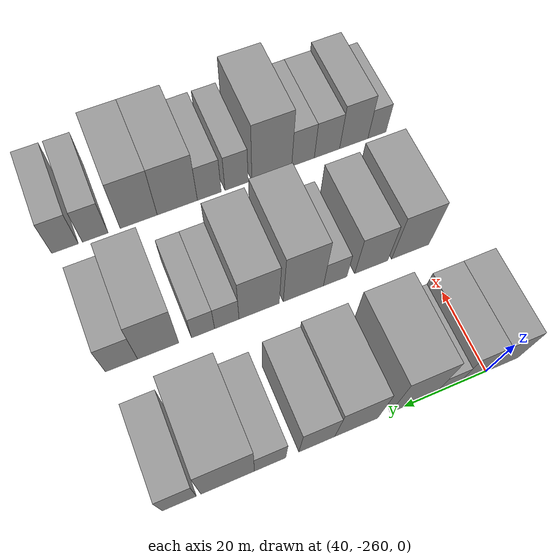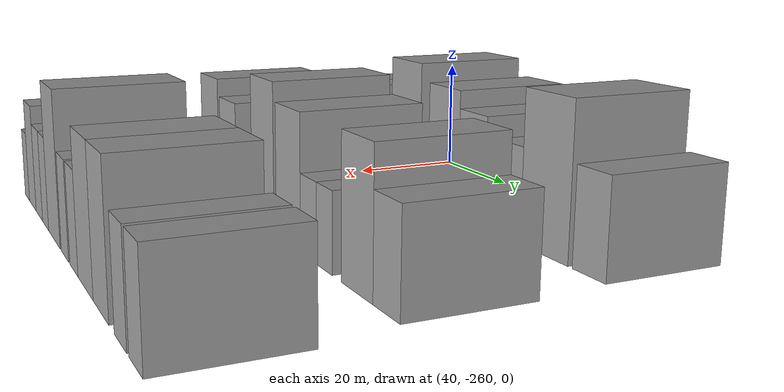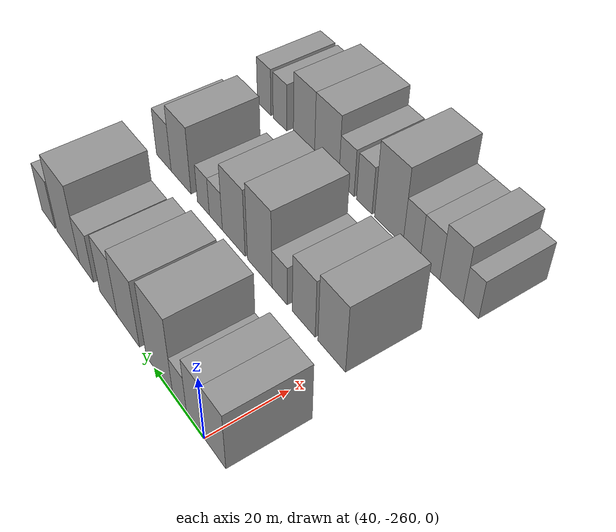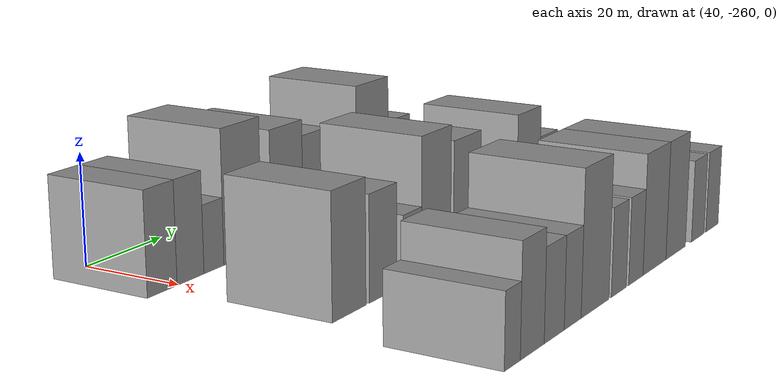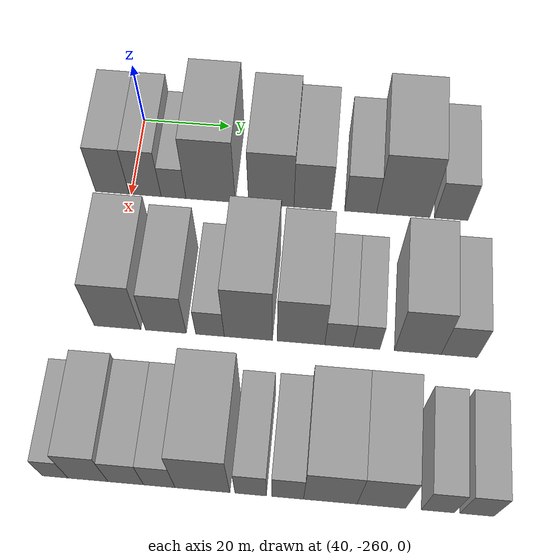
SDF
<sdf version="1.6">
 <world name="default">
  <model name="building_10">
   <static>1</static>
   <pose>50.0000 -264.2243 0 0.000000 0.000000 0.000000</pose>
   <link name="link">
    <pose>0 0 9.00 0 0 0</pose>
    <collision name="collision"><geometry><box><size>20.0000 7.6328 18.0000</size></box></geometry></collision>
    <visual name="visual">
     <cast_shadows>0</cast_shadows>
     <geometry><box><size>20.0000 7.6328 18.0000</size></box></geometry>
     <material>
      <script>
       <uri>model://grey_wall/materials/scripts</uri>
       <uri>model://grey_wall/materials/textures</uri>
       <name>vrc/grey_wall</name>
      </script>
     </material>
    </visual>
   </link>
  </model>
  <model name="building_11">
   <static>1</static>
   <pose>50.0000 -256.8023 0 0.000000 0.000000 0.000000</pose>
   <link name="link">
    <pose>0 0 9.00 0 0 0</pose>
    <collision name="collision"><geometry><box><size>20.0000 7.2111 18.0000</size></box></geometry></collision>
    <visual name="visual">
     <cast_shadows>0</cast_shadows>
     <geometry><box><size>20.0000 7.2111 18.0000</size></box></geometry>
     <material>
      <script>
       <uri>model://grey_wall/materials/scripts</uri>
       <uri>model://grey_wall/materials/textures</uri>
       <name>vrc/grey_wall</name>
      </script>
     </material>
    </visual>
   </link>
  </model>
  <model name="building_12">
   <static>1</static>
   <pose>50.0000 -250.4106 0 0.000000 0.000000 0.000000</pose>
   <link name="link">
    <pose>0 0 6.00 0 0 0</pose>
    <collision name="collision"><geometry><box><size>20.0000 5.5723 12.0000</size></box></geometry></collision>
    <visual name="visual">
     <cast_shadows>0</cast_shadows>
     <geometry><box><size>20.0000 5.5723 12.0000</size></box></geometry>
     <material>
      <script>
       <uri>model://grey_wall/materials/scripts</uri>
       <uri>model://grey_wall/materials/textures</uri>
       <name>vrc/grey_wall</name>
      </script>
     </material>
    </visual>
   </link>
  </model>
  <model name="building_13">
   <static>1</static>
   <pose>50.0000 -242.0929 0 0.000000 0.000000 0.000000</pose>
   <link name="link">
    <pose>0 0 12.00 0 0 0</pose>
    <collision name="collision"><geometry><box><size>20.0000 11.0631 24.0000</size></box></geometry></collision>
    <visual name="visual">
     <cast_shadows>0</cast_shadows>
     <geometry><box><size>20.0000 11.0631 24.0000</size></box></geometry>
     <material>
      <script>
       <uri>model://grey_wall/materials/scripts</uri>
       <uri>model://grey_wall/materials/textures</uri>
       <name>vrc/grey_wall</name>
      </script>
     </material>
    </visual>
   </link>
  </model>
  <model name="building_14">
   <static>1</static>
   <pose>50.0000 -228.4945 0 0.000000 0.000000 0.000000</pose>
   <link name="link">
    <pose>0 0 10.50 0 0 0</pose>
    <collision name="collision"><geometry><box><size>20.0000 10.1337 21.0000</size></box></geometry></collision>
    <visual name="visual">
     <cast_shadows>0</cast_shadows>
     <geometry><box><size>20.0000 10.1337 21.0000</size></box></geometry>
     <material>
      <script>
       <uri>model://grey_wall/materials/scripts</uri>
       <uri>model://grey_wall/materials/textures</uri>
       <name>vrc/grey_wall</name>
      </script>
     </material>
    </visual>
   </link>
  </model>
  <model name="building_15">
   <static>1</static>
   <pose>50.0000 -219.2789 0 0.000000 0.000000 0.000000</pose>
   <link name="link">
    <pose>0 0 9.00 0 0 0</pose>
    <collision name="collision"><geometry><box><size>20.0000 8.2975 18.0000</size></box></geometry></collision>
    <visual name="visual">
     <cast_shadows>0</cast_shadows>
     <geometry><box><size>20.0000 8.2975 18.0000</size></box></geometry>
     <material>
      <script>
       <uri>model://grey_wall/materials/scripts</uri>
       <uri>model://grey_wall/materials/textures</uri>
       <name>vrc/grey_wall</name>
      </script>
     </material>
    </visual>
   </link>
  </model>
  <model name="building_16">
   <static>1</static>
   <pose>50.0000 -208.5931 0 0.000000 0.000000 0.000000</pose>
   <link name="link">
    <pose>0 0 7.50 0 0 0</pose>
    <collision name="collision"><geometry><box><size>20.0000 7.0739 15.0000</size></box></geometry></collision>
    <visual name="visual">
     <cast_shadows>0</cast_shadows>
     <geometry><box><size>20.0000 7.0739 15.0000</size></box></geometry>
     <material>
      <script>
       <uri>model://grey_wall/materials/scripts</uri>
       <uri>model://grey_wall/materials/textures</uri>
       <name>vrc/grey_wall</name>
      </script>
     </material>
    </visual>
   </link>
  </model>
  <model name="building_17">
   <static>1</static>
   <pose>50.0000 -199.1446 0 0.000000 0.000000 0.000000</pose>
   <link name="link">
    <pose>0 0 12.00 0 0 0</pose>
    <collision name="collision"><geometry><box><size>20.0000 11.8231 24.0000</size></box></geometry></collision>
    <visual name="visual">
     <cast_shadows>0</cast_shadows>
     <geometry><box><size>20.0000 11.8231 24.0000</size></box></geometry>
     <material>
      <script>
       <uri>model://grey_wall/materials/scripts</uri>
       <uri>model://grey_wall/materials/textures</uri>
       <name>vrc/grey_wall</name>
      </script>
     </material>
    </visual>
   </link>
  </model>
  <model name="building_18">
   <static>1</static>
   <pose>50.0000 -188.5425 0 0.000000 0.000000 0.000000</pose>
   <link name="link">
    <pose>0 0 7.50 0 0 0</pose>
    <collision name="collision"><geometry><box><size>20.0000 7.3811 15.0000</size></box></geometry></collision>
    <visual name="visual">
     <cast_shadows>0</cast_shadows>
     <geometry><box><size>20.0000 7.3811 15.0000</size></box></geometry>
     <material>
      <script>
       <uri>model://grey_wall/materials/scripts</uri>
       <uri>model://grey_wall/materials/textures</uri>
       <name>vrc/grey_wall</name>
      </script>
     </material>
    </visual>
   </link>
  </model>
  <model name="building_93">
   <static>1</static>
   <pose>82.0000 -257.8873 0 0.000000 0.000000 0.000000</pose>
   <link name="link">
    <pose>0 0 10.50 0 0 0</pose>
    <collision name="collision"><geometry><box><size>20.0000 9.8212 21.0000</size></box></geometry></collision>
    <visual name="visual">
     <cast_shadows>0</cast_shadows>
     <geometry><box><size>20.0000 9.8212 21.0000</size></box></geometry>
     <material>
      <script>
       <uri>model://grey_wall/materials/scripts</uri>
       <uri>model://grey_wall/materials/textures</uri>
       <name>vrc/grey_wall</name>
      </script>
     </material>
    </visual>
   </link>
  </model>
  <model name="building_94">
   <static>1</static>
   <pose>82.0000 -247.6939 0 0.000000 0.000000 0.000000</pose>
   <link name="link">
    <pose>0 0 9.00 0 0 0</pose>
    <collision name="collision"><geometry><box><size>20.0000 8.5656 18.0000</size></box></geometry></collision>
    <visual name="visual">
     <cast_shadows>0</cast_shadows>
     <geometry><box><size>20.0000 8.5656 18.0000</size></box></geometry>
     <material>
      <script>
       <uri>model://grey_wall/materials/scripts</uri>
       <uri>model://grey_wall/materials/textures</uri>
       <name>vrc/grey_wall</name>
      </script>
     </material>
    </visual>
   </link>
  </model>
  <model name="building_95">
   <static>1</static>
   <pose>82.0000 -238.4251 0 0.000000 0.000000 0.000000</pose>
   <link name="link">
    <pose>0 0 6.00 0 0 0</pose>
    <collision name="collision"><geometry><box><size>20.0000 5.9721 12.0000</size></box></geometry></collision>
    <visual name="visual">
     <cast_shadows>0</cast_shadows>
     <geometry><box><size>20.0000 5.9721 12.0000</size></box></geometry>
     <material>
      <script>
       <uri>model://grey_wall/materials/scripts</uri>
       <uri>model://grey_wall/materials/textures</uri>
       <name>vrc/grey_wall</name>
      </script>
     </material>
    </visual>
   </link>
  </model>
  <model name="building_96">
   <static>1</static>
   <pose>82.0000 -230.4019 0 0.000000 0.000000 0.000000</pose>
   <link name="link">
    <pose>0 0 12.00 0 0 0</pose>
    <collision name="collision"><geometry><box><size>20.0000 10.0741 24.0000</size></box></geometry></collision>
    <visual name="visual">
     <cast_shadows>0</cast_shadows>
     <geometry><box><size>20.0000 10.0741 24.0000</size></box></geometry>
     <material>
      <script>
       <uri>model://grey_wall/materials/scripts</uri>
       <uri>model://grey_wall/materials/textures</uri>
       <name>vrc/grey_wall</name>
      </script>
     </material>
    </visual>
   </link>
  </model>
  <model name="building_97">
   <static>1</static>
   <pose>82.0000 -219.4289 0 0.000000 0.000000 0.000000</pose>
   <link name="link">
    <pose>0 0 10.50 0 0 0</pose>
    <collision name="collision"><geometry><box><size>20.0000 9.8720 21.0000</size></box></geometry></collision>
    <visual name="visual">
     <cast_shadows>0</cast_shadows>
     <geometry><box><size>20.0000 9.8720 21.0000</size></box></geometry>
     <material>
      <script>
       <uri>model://grey_wall/materials/scripts</uri>
       <uri>model://grey_wall/materials/textures</uri>
       <name>vrc/grey_wall</name>
      </script>
     </material>
    </visual>
   </link>
  </model>
  <model name="building_98">
   <static>1</static>
   <pose>82.0000 -211.5435 0 0.000000 0.000000 0.000000</pose>
   <link name="link">
    <pose>0 0 6.00 0 0 0</pose>
    <collision name="collision"><geometry><box><size>20.0000 5.8987 12.0000</size></box></geometry></collision>
    <visual name="visual">
     <cast_shadows>0</cast_shadows>
     <geometry><box><size>20.0000 5.8987 12.0000</size></box></geometry>
     <material>
      <script>
       <uri>model://grey_wall/materials/scripts</uri>
       <uri>model://grey_wall/materials/textures</uri>
       <name>vrc/grey_wall</name>
      </script>
     </material>
    </visual>
   </link>
  </model>
  <model name="building_99">
   <static>1</static>
   <pose>82.0000 -205.8228 0 0.000000 0.000000 0.000000</pose>
   <link name="link">
    <pose>0 0 6.00 0 0 0</pose>
    <collision name="collision"><geometry><box><size>20.0000 5.5427 12.0000</size></box></geometry></collision>
    <visual name="visual">
     <cast_shadows>0</cast_shadows>
     <geometry><box><size>20.0000 5.5427 12.0000</size></box></geometry>
     <material>
      <script>
       <uri>model://grey_wall/materials/scripts</uri>
       <uri>model://grey_wall/materials/textures</uri>
       <name>vrc/grey_wall</name>
      </script>
     </material>
    </visual>
   </link>
  </model>
  <model name="building_100">
   <static>1</static>
   <pose>82.0000 -195.2191 0 0.000000 0.000000 0.000000</pose>
   <link name="link">
    <pose>0 0 10.50 0 0 0</pose>
    <collision name="collision"><geometry><box><size>20.0000 9.6647 21.0000</size></box></geometry></collision>
    <visual name="visual">
     <cast_shadows>0</cast_shadows>
     <geometry><box><size>20.0000 9.6647 21.0000</size></box></geometry>
     <material>
      <script>
       <uri>model://grey_wall/materials/scripts</uri>
       <uri>model://grey_wall/materials/textures</uri>
       <name>vrc/grey_wall</name>
      </script>
     </material>
    </visual>
   </link>
  </model>
  <model name="building_101">
   <static>1</static>
   <pose>82.0000 -186.6621 0 0.000000 0.000000 0.000000</pose>
   <link name="link">
    <pose>0 0 7.50 0 0 0</pose>
    <collision name="collision"><geometry><box><size>20.0000 7.4494 15.0000</size></box></geometry></collision>
    <visual name="visual">
     <cast_shadows>0</cast_shadows>
     <geometry><box><size>20.0000 7.4494 15.0000</size></box></geometry>
     <material>
      <script>
       <uri>model://grey_wall/materials/scripts</uri>
       <uri>model://grey_wall/materials/textures</uri>
       <name>vrc/grey_wall</name>
      </script>
     </material>
    </visual>
   </link>
  </model>
  <model name="building_166">
   <static>1</static>
   <pose>114.0000 -264.9786 0 0.000000 0.000000 0.000000</pose>
   <link name="link">
    <pose>0 0 6.00 0 0 0</pose>
    <collision name="collision"><geometry><box><size>20.0000 5.0729 12.0000</size></box></geometry></collision>
    <visual name="visual">
     <cast_shadows>0</cast_shadows>
     <geometry><box><size>20.0000 5.0729 12.0000</size></box></geometry>
     <material>
      <script>
       <uri>model://grey_wall/materials/scripts</uri>
       <uri>model://grey_wall/materials/textures</uri>
       <name>vrc/grey_wall</name>
      </script>
     </material>
    </visual>
   </link>
  </model>
  <model name="building_167">
   <static>1</static>
   <pose>114.0000 -258.4959 0 0.000000 0.000000 0.000000</pose>
   <link name="link">
    <pose>0 0 9.00 0 0 0</pose>
    <collision name="collision"><geometry><box><size>20.0000 7.8925 18.0000</size></box></geometry></collision>
    <visual name="visual">
     <cast_shadows>0</cast_shadows>
     <geometry><box><size>20.0000 7.8925 18.0000</size></box></geometry>
     <material>
      <script>
       <uri>model://grey_wall/materials/scripts</uri>
       <uri>model://grey_wall/materials/textures</uri>
       <name>vrc/grey_wall</name>
      </script>
     </material>
    </visual>
   </link>
  </model>
  <model name="building_168">
   <static>1</static>
   <pose>114.0000 -251.0713 0 0.000000 0.000000 0.000000</pose>
   <link name="link">
    <pose>0 0 7.50 0 0 0</pose>
    <collision name="collision"><geometry><box><size>20.0000 6.9567 15.0000</size></box></geometry></collision>
    <visual name="visual">
     <cast_shadows>0</cast_shadows>
     <geometry><box><size>20.0000 6.9567 15.0000</size></box></geometry>
     <material>
      <script>
       <uri>model://grey_wall/materials/scripts</uri>
       <uri>model://grey_wall/materials/textures</uri>
       <name>vrc/grey_wall</name>
      </script>
     </material>
    </visual>
   </link>
  </model>
  <model name="building_169">
   <static>1</static>
   <pose>114.0000 -244.5166 0 0.000000 0.000000 0.000000</pose>
   <link name="link">
    <pose>0 0 7.50 0 0 0</pose>
    <collision name="collision"><geometry><box><size>20.0000 6.1526 15.0000</size></box></geometry></collision>
    <visual name="visual">
     <cast_shadows>0</cast_shadows>
     <geometry><box><size>20.0000 6.1526 15.0000</size></box></geometry>
     <material>
      <script>
       <uri>model://grey_wall/materials/scripts</uri>
       <uri>model://grey_wall/materials/textures</uri>
       <name>vrc/grey_wall</name>
      </script>
     </material>
    </visual>
   </link>
  </model>
  <model name="building_170">
   <static>1</static>
   <pose>114.0000 -236.1045 0 0.000000 0.000000 0.000000</pose>
   <link name="link">
    <pose>0 0 12.00 0 0 0</pose>
    <collision name="collision"><geometry><box><size>20.0000 10.6715 24.0000</size></box></geometry></collision>
    <visual name="visual">
     <cast_shadows>0</cast_shadows>
     <geometry><box><size>20.0000 10.6715 24.0000</size></box></geometry>
     <material>
      <script>
       <uri>model://grey_wall/materials/scripts</uri>
       <uri>model://grey_wall/materials/textures</uri>
       <name>vrc/grey_wall</name>
      </script>
     </material>
    </visual>
   </link>
  </model>
  <model name="building_171">
   <static>1</static>
   <pose>114.0000 -226.7245 0 0.000000 0.000000 0.000000</pose>
   <link name="link">
    <pose>0 0 7.50 0 0 0</pose>
    <collision name="collision"><geometry><box><size>20.0000 6.0885 15.0000</size></box></geometry></collision>
    <visual name="visual">
     <cast_shadows>0</cast_shadows>
     <geometry><box><size>20.0000 6.0885 15.0000</size></box></geometry>
     <material>
      <script>
       <uri>model://grey_wall/materials/scripts</uri>
       <uri>model://grey_wall/materials/textures</uri>
       <name>vrc/grey_wall</name>
      </script>
     </material>
    </visual>
   </link>
  </model>
  <model name="building_172">
   <static>1</static>
   <pose>114.0000 -219.5933 0 0.000000 0.000000 0.000000</pose>
   <link name="link">
    <pose>0 0 7.50 0 0 0</pose>
    <collision name="collision"><geometry><box><size>20.0000 6.1740 15.0000</size></box></geometry></collision>
    <visual name="visual">
     <cast_shadows>0</cast_shadows>
     <geometry><box><size>20.0000 6.1740 15.0000</size></box></geometry>
     <material>
      <script>
       <uri>model://grey_wall/materials/scripts</uri>
       <uri>model://grey_wall/materials/textures</uri>
       <name>vrc/grey_wall</name>
      </script>
     </material>
    </visual>
   </link>
  </model>
  <model name="building_173">
   <static>1</static>
   <pose>114.0000 -211.3377 0 0.000000 0.000000 0.000000</pose>
   <link name="link">
    <pose>0 0 10.50 0 0 0</pose>
    <collision name="collision"><geometry><box><size>20.0000 10.3371 21.0000</size></box></geometry></collision>
    <visual name="visual">
     <cast_shadows>0</cast_shadows>
     <geometry><box><size>20.0000 10.3371 21.0000</size></box></geometry>
     <material>
      <script>
       <uri>model://grey_wall/materials/scripts</uri>
       <uri>model://grey_wall/materials/textures</uri>
       <name>vrc/grey_wall</name>
      </script>
     </material>
    </visual>
   </link>
  </model>
  <model name="building_174">
   <static>1</static>
   <pose>114.0000 -201.4974 0 0.000000 0.000000 0.000000</pose>
   <link name="link">
    <pose>0 0 10.50 0 0 0</pose>
    <collision name="collision"><geometry><box><size>20.0000 9.3435 21.0000</size></box></geometry></collision>
    <visual name="visual">
     <cast_shadows>0</cast_shadows>
     <geometry><box><size>20.0000 9.3435 21.0000</size></box></geometry>
     <material>
      <script>
       <uri>model://grey_wall/materials/scripts</uri>
       <uri>model://grey_wall/materials/textures</uri>
       <name>vrc/grey_wall</name>
      </script>
     </material>
    </visual>
   </link>
  </model>
  <model name="building_175">
   <static>1</static>
   <pose>114.0000 -190.6413 0 0.000000 0.000000 0.000000</pose>
   <link name="link">
    <pose>0 0 7.50 0 0 0</pose>
    <collision name="collision"><geometry><box><size>20.0000 6.3685 15.0000</size></box></geometry></collision>
    <visual name="visual">
     <cast_shadows>0</cast_shadows>
     <geometry><box><size>20.0000 6.3685 15.0000</size></box></geometry>
     <material>
      <script>
       <uri>model://grey_wall/materials/scripts</uri>
       <uri>model://grey_wall/materials/textures</uri>
       <name>vrc/grey_wall</name>
      </script>
     </material>
    </visual>
   </link>
  </model>
  <model name="building_176">
   <static>1</static>
   <pose>114.0000 -183.2062 0 0.000000 0.000000 0.000000</pose>
   <link name="link">
    <pose>0 0 7.50 0 0 0</pose>
    <collision name="collision"><geometry><box><size>20.0000 6.5018 15.0000</size></box></geometry></collision>
    <visual name="visual">
     <cast_shadows>0</cast_shadows>
     <geometry><box><size>20.0000 6.5018 15.0000</size></box></geometry>
     <material>
      <script>
       <uri>model://grey_wall/materials/scripts</uri>
       <uri>model://grey_wall/materials/textures</uri>
       <name>vrc/grey_wall</name>
      </script>
     </material>
    </visual>
   </link>
  </model>
 </world>
</sdf>
